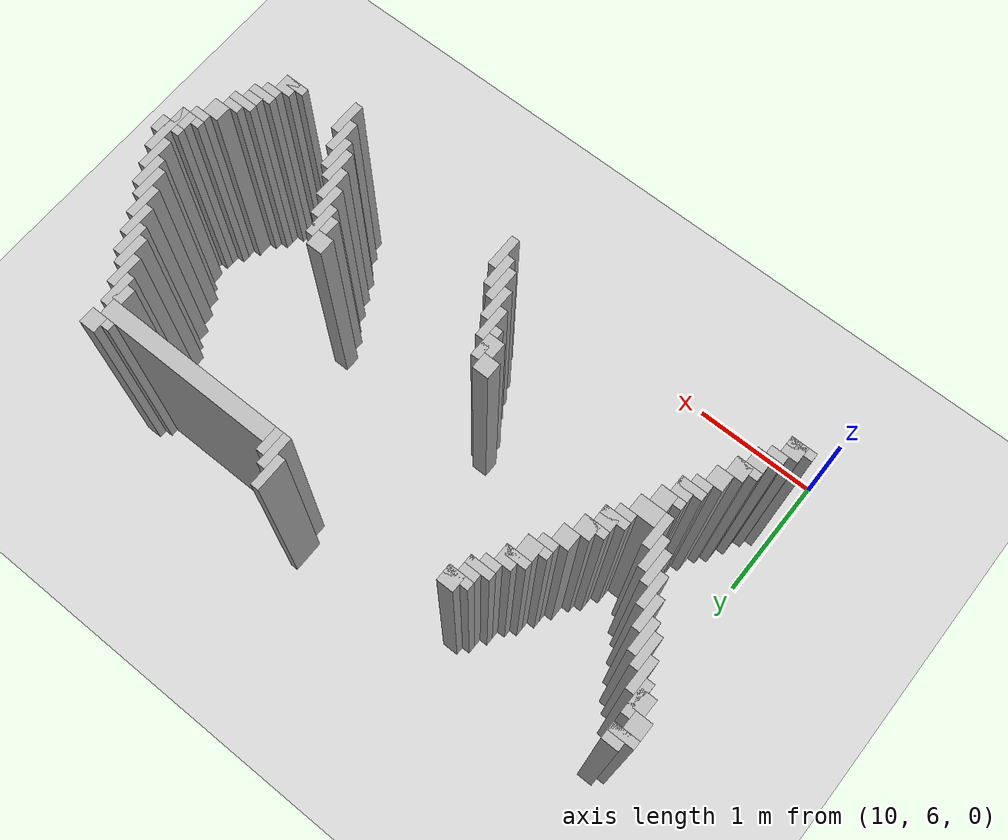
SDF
<sdf version="1.6">
 <world name="slam_world">
  <model name="ground_plane">
   <static>true</static>
   <link name="link">
    <collision name="collision">
     <geometry><plane><normal>0 0 1</normal><size>100 100</size></plane></geometry>
    </collision>
    <visual name="visual">
     <geometry><plane><normal>0 0 1</normal><size>100 100</size></plane></geometry>
     <material>
      <ambient>0.8 0.8 0.8 1</ambient>
      <diffuse>0.8 0.8 0.8 1</diffuse>
      <specular>0.8 0.8 0.8 1</specular>
     </material>
    </visual>
   </link>
  </model>
  <model name="wall_1483">
   <static>true</static>
   <pose>12.670212765957446 8.808510638297872 1.0 0 0 0</pose>
   <link name="link">
    <collision name="collision">
     <geometry><box><size>0.06382978723404255 0.2553191489361702 2.0</size></box></geometry>
    </collision>
    <visual name="visual">
     <geometry><box><size>0.06382978723404255 0.2553191489361702 2.0</size></box></geometry>
     <material><ambient>0.5 0.5 0.5 1</ambient><diffuse>0.7 0.7 0.7 1</diffuse></material>
    </visual>
   </link>
  </model>
  <model name="wall_1497">
   <static>true</static>
   <pose>10.02127659574468 8.74468085106383 1.0 0 0 0</pose>
   <link name="link">
    <collision name="collision">
     <geometry><box><size>0.1276595744680851 0.1276595744680851 2.0</size></box></geometry>
    </collision>
    <visual name="visual">
     <geometry><box><size>0.1276595744680851 0.1276595744680851 2.0</size></box></geometry>
     <material><ambient>0.5 0.5 0.5 1</ambient><diffuse>0.7 0.7 0.7 1</diffuse></material>
    </visual>
   </link>
  </model>
  <model name="wall_1498">
   <static>true</static>
   <pose>12.734042553191488 8.680851063829786 1.0 0 0 0</pose>
   <link name="link">
    <collision name="collision">
     <geometry><box><size>0.06382978723404255 0.2553191489361702 2.0</size></box></geometry>
    </collision>
    <visual name="visual">
     <geometry><box><size>0.06382978723404255 0.2553191489361702 2.0</size></box></geometry>
     <material><ambient>0.5 0.5 0.5 1</ambient><diffuse>0.7 0.7 0.7 1</diffuse></material>
    </visual>
   </link>
  </model>
  <model name="wall_1499">
   <static>true</static>
   <pose>14.234042553191488 8.74468085106383 1.0 0 0 0</pose>
   <link name="link">
    <collision name="collision">
     <geometry><box><size>0.1276595744680851 0.1276595744680851 2.0</size></box></geometry>
    </collision>
    <visual name="visual">
     <geometry><box><size>0.1276595744680851 0.1276595744680851 2.0</size></box></geometry>
     <material><ambient>0.5 0.5 0.5 1</ambient><diffuse>0.7 0.7 0.7 1</diffuse></material>
    </visual>
   </link>
  </model>
  <model name="wall_1504">
   <static>true</static>
   <pose>9.989361702127658 8.712765957446807 1.0 0 0 0</pose>
   <link name="link">
    <collision name="collision">
     <geometry><box><size>0.19148936170212766 0.06382978723404255 2.0</size></box></geometry>
    </collision>
    <visual name="visual">
     <geometry><box><size>0.19148936170212766 0.06382978723404255 2.0</size></box></geometry>
     <material><ambient>0.5 0.5 0.5 1</ambient><diffuse>0.7 0.7 0.7 1</diffuse></material>
    </visual>
   </link>
  </model>
  <model name="wall_1505">
   <static>true</static>
   <pose>12.797872340425531 8.648936170212766 1.0 0 0 0</pose>
   <link name="link">
    <collision name="collision">
     <geometry><box><size>0.06382978723404255 0.19148936170212766 2.0</size></box></geometry>
    </collision>
    <visual name="visual">
     <geometry><box><size>0.06382978723404255 0.19148936170212766 2.0</size></box></geometry>
     <material><ambient>0.5 0.5 0.5 1</ambient><diffuse>0.7 0.7 0.7 1</diffuse></material>
    </visual>
   </link>
  </model>
  <model name="wall_1506">
   <static>true</static>
   <pose>14.202127659574467 8.712765957446807 1.0 0 0 0</pose>
   <link name="link">
    <collision name="collision">
     <geometry><box><size>0.19148936170212766 0.06382978723404255 2.0</size></box></geometry>
    </collision>
    <visual name="visual">
     <geometry><box><size>0.19148936170212766 0.06382978723404255 2.0</size></box></geometry>
     <material><ambient>0.5 0.5 0.5 1</ambient><diffuse>0.7 0.7 0.7 1</diffuse></material>
    </visual>
   </link>
  </model>
  <model name="wall_1513">
   <static>true</static>
   <pose>9.957446808510637 8.617021276595745 1.0 0 0 0</pose>
   <link name="link">
    <collision name="collision">
     <geometry><box><size>0.1276595744680851 0.1276595744680851 2.0</size></box></geometry>
    </collision>
    <visual name="visual">
     <geometry><box><size>0.1276595744680851 0.1276595744680851 2.0</size></box></geometry>
     <material><ambient>0.5 0.5 0.5 1</ambient><diffuse>0.7 0.7 0.7 1</diffuse></material>
    </visual>
   </link>
  </model>
  <model name="wall_1514">
   <static>true</static>
   <pose>11.361702127659573 8.617021276595745 1.0 0 0 0</pose>
   <link name="link">
    <collision name="collision">
     <geometry><box><size>0.1276595744680851 0.1276595744680851 2.0</size></box></geometry>
    </collision>
    <visual name="visual">
     <geometry><box><size>0.1276595744680851 0.1276595744680851 2.0</size></box></geometry>
     <material><ambient>0.5 0.5 0.5 1</ambient><diffuse>0.7 0.7 0.7 1</diffuse></material>
    </visual>
   </link>
  </model>
  <model name="wall_1515">
   <static>true</static>
   <pose>13.53191489361702 8.617021276595745 1.0 0 0 0</pose>
   <link name="link">
    <collision name="collision">
     <geometry><box><size>1.404255319148936 0.1276595744680851 2.0</size></box></geometry>
    </collision>
    <visual name="visual">
     <geometry><box><size>1.404255319148936 0.1276595744680851 2.0</size></box></geometry>
     <material><ambient>0.5 0.5 0.5 1</ambient><diffuse>0.7 0.7 0.7 1</diffuse></material>
    </visual>
   </link>
  </model>
  <model name="wall_1521">
   <static>true</static>
   <pose>10.053191489361701 8.48936170212766 1.0 0 0 0</pose>
   <link name="link">
    <collision name="collision">
     <geometry><box><size>0.06382978723404255 0.2553191489361702 2.0</size></box></geometry>
    </collision>
    <visual name="visual">
     <geometry><box><size>0.06382978723404255 0.2553191489361702 2.0</size></box></geometry>
     <material><ambient>0.5 0.5 0.5 1</ambient><diffuse>0.7 0.7 0.7 1</diffuse></material>
    </visual>
   </link>
  </model>
  <model name="wall_1522">
   <static>true</static>
   <pose>11.329787234042552 8.585106382978722 1.0 0 0 0</pose>
   <link name="link">
    <collision name="collision">
     <geometry><box><size>0.19148936170212766 0.06382978723404255 2.0</size></box></geometry>
    </collision>
    <visual name="visual">
     <geometry><box><size>0.19148936170212766 0.06382978723404255 2.0</size></box></geometry>
     <material><ambient>0.5 0.5 0.5 1</ambient><diffuse>0.7 0.7 0.7 1</diffuse></material>
    </visual>
   </link>
  </model>
  <model name="wall_1523">
   <static>true</static>
   <pose>14.265957446808509 8.48936170212766 1.0 0 0 0</pose>
   <link name="link">
    <collision name="collision">
     <geometry><box><size>0.06382978723404255 0.2553191489361702 2.0</size></box></geometry>
    </collision>
    <visual name="visual">
     <geometry><box><size>0.06382978723404255 0.2553191489361702 2.0</size></box></geometry>
     <material><ambient>0.5 0.5 0.5 1</ambient><diffuse>0.7 0.7 0.7 1</diffuse></material>
    </visual>
   </link>
  </model>
  <model name="wall_1528">
   <static>true</static>
   <pose>10.02127659574468 8.48936170212766 1.0 0 0 0</pose>
   <link name="link">
    <collision name="collision">
     <geometry><box><size>0.1276595744680851 0.1276595744680851 2.0</size></box></geometry>
    </collision>
    <visual name="visual">
     <geometry><box><size>0.1276595744680851 0.1276595744680851 2.0</size></box></geometry>
     <material><ambient>0.5 0.5 0.5 1</ambient><diffuse>0.7 0.7 0.7 1</diffuse></material>
    </visual>
   </link>
  </model>
  <model name="wall_1529">
   <static>true</static>
   <pose>11.297872340425531 8.48936170212766 1.0 0 0 0</pose>
   <link name="link">
    <collision name="collision">
     <geometry><box><size>0.1276595744680851 0.1276595744680851 2.0</size></box></geometry>
    </collision>
    <visual name="visual">
     <geometry><box><size>0.1276595744680851 0.1276595744680851 2.0</size></box></geometry>
     <material><ambient>0.5 0.5 0.5 1</ambient><diffuse>0.7 0.7 0.7 1</diffuse></material>
    </visual>
   </link>
  </model>
  <model name="wall_1530">
   <static>true</static>
   <pose>14.234042553191488 8.48936170212766 1.0 0 0 0</pose>
   <link name="link">
    <collision name="collision">
     <geometry><box><size>0.1276595744680851 0.1276595744680851 2.0</size></box></geometry>
    </collision>
    <visual name="visual">
     <geometry><box><size>0.1276595744680851 0.1276595744680851 2.0</size></box></geometry>
     <material><ambient>0.5 0.5 0.5 1</ambient><diffuse>0.7 0.7 0.7 1</diffuse></material>
    </visual>
   </link>
  </model>
  <model name="wall_1536">
   <static>true</static>
   <pose>10.117021276595743 8.361702127659575 1.0 0 0 0</pose>
   <link name="link">
    <collision name="collision">
     <geometry><box><size>0.06382978723404255 0.2553191489361702 2.0</size></box></geometry>
    </collision>
    <visual name="visual">
     <geometry><box><size>0.06382978723404255 0.2553191489361702 2.0</size></box></geometry>
     <material><ambient>0.5 0.5 0.5 1</ambient><diffuse>0.7 0.7 0.7 1</diffuse></material>
    </visual>
   </link>
  </model>
  <model name="wall_1537">
   <static>true</static>
   <pose>11.26595744680851 8.457446808510637 1.0 0 0 0</pose>
   <link name="link">
    <collision name="collision">
     <geometry><box><size>0.19148936170212766 0.06382978723404255 2.0</size></box></geometry>
    </collision>
    <visual name="visual">
     <geometry><box><size>0.19148936170212766 0.06382978723404255 2.0</size></box></geometry>
     <material><ambient>0.5 0.5 0.5 1</ambient><diffuse>0.7 0.7 0.7 1</diffuse></material>
    </visual>
   </link>
  </model>
  <model name="wall_1538">
   <static>true</static>
   <pose>14.329787234042552 8.361702127659575 1.0 0 0 0</pose>
   <link name="link">
    <collision name="collision">
     <geometry><box><size>0.06382978723404255 0.2553191489361702 2.0</size></box></geometry>
    </collision>
    <visual name="visual">
     <geometry><box><size>0.06382978723404255 0.2553191489361702 2.0</size></box></geometry>
     <material><ambient>0.5 0.5 0.5 1</ambient><diffuse>0.7 0.7 0.7 1</diffuse></material>
    </visual>
   </link>
  </model>
  <model name="wall_1539">
   <static>true</static>
   <pose>11.234042553191488 8.393617021276595 1.0 0 0 0</pose>
   <link name="link">
    <collision name="collision">
     <geometry><box><size>0.1276595744680851 0.06382978723404255 2.0</size></box></geometry>
    </collision>
    <visual name="visual">
     <geometry><box><size>0.1276595744680851 0.06382978723404255 2.0</size></box></geometry>
     <material><ambient>0.5 0.5 0.5 1</ambient><diffuse>0.7 0.7 0.7 1</diffuse></material>
    </visual>
   </link>
  </model>
  <model name="wall_1545">
   <static>true</static>
   <pose>10.180851063829786 8.23404255319149 1.0 0 0 0</pose>
   <link name="link">
    <collision name="collision">
     <geometry><box><size>0.06382978723404255 0.2553191489361702 2.0</size></box></geometry>
    </collision>
    <visual name="visual">
     <geometry><box><size>0.06382978723404255 0.2553191489361702 2.0</size></box></geometry>
     <material><ambient>0.5 0.5 0.5 1</ambient><diffuse>0.7 0.7 0.7 1</diffuse></material>
    </visual>
   </link>
  </model>
  <model name="wall_1546">
   <static>true</static>
   <pose>11.170212765957446 8.297872340425531 1.0 0 0 0</pose>
   <link name="link">
    <collision name="collision">
     <geometry><box><size>0.1276595744680851 0.1276595744680851 2.0</size></box></geometry>
    </collision>
    <visual name="visual">
     <geometry><box><size>0.1276595744680851 0.1276595744680851 2.0</size></box></geometry>
     <material><ambient>0.5 0.5 0.5 1</ambient><diffuse>0.7 0.7 0.7 1</diffuse></material>
    </visual>
   </link>
  </model>
  <model name="wall_1547">
   <static>true</static>
   <pose>14.393617021276595 8.23404255319149 1.0 0 0 0</pose>
   <link name="link">
    <collision name="collision">
     <geometry><box><size>0.06382978723404255 0.2553191489361702 2.0</size></box></geometry>
    </collision>
    <visual name="visual">
     <geometry><box><size>0.06382978723404255 0.2553191489361702 2.0</size></box></geometry>
     <material><ambient>0.5 0.5 0.5 1</ambient><diffuse>0.7 0.7 0.7 1</diffuse></material>
    </visual>
   </link>
  </model>
  <model name="wall_1553">
   <static>true</static>
   <pose>10.24468085106383 8.170212765957446 1.0 0 0 0</pose>
   <link name="link">
    <collision name="collision">
     <geometry><box><size>0.06382978723404255 0.2553191489361702 2.0</size></box></geometry>
    </collision>
    <visual name="visual">
     <geometry><box><size>0.06382978723404255 0.2553191489361702 2.0</size></box></geometry>
     <material><ambient>0.5 0.5 0.5 1</ambient><diffuse>0.7 0.7 0.7 1</diffuse></material>
    </visual>
   </link>
  </model>
  <model name="wall_1554">
   <static>true</static>
   <pose>11.138297872340425 8.26595744680851 1.0 0 0 0</pose>
   <link name="link">
    <collision name="collision">
     <geometry><box><size>0.19148936170212766 0.06382978723404255 2.0</size></box></geometry>
    </collision>
    <visual name="visual">
     <geometry><box><size>0.19148936170212766 0.06382978723404255 2.0</size></box></geometry>
     <material><ambient>0.5 0.5 0.5 1</ambient><diffuse>0.7 0.7 0.7 1</diffuse></material>
    </visual>
   </link>
  </model>
  <model name="wall_1555">
   <static>true</static>
   <pose>14.457446808510637 8.170212765957446 1.0 0 0 0</pose>
   <link name="link">
    <collision name="collision">
     <geometry><box><size>0.06382978723404255 0.2553191489361702 2.0</size></box></geometry>
    </collision>
    <visual name="visual">
     <geometry><box><size>0.06382978723404255 0.2553191489361702 2.0</size></box></geometry>
     <material><ambient>0.5 0.5 0.5 1</ambient><diffuse>0.7 0.7 0.7 1</diffuse></material>
    </visual>
   </link>
  </model>
  <model name="wall_1556">
   <static>true</static>
   <pose>11.106382978723403 8.170212765957446 1.0 0 0 0</pose>
   <link name="link">
    <collision name="collision">
     <geometry><box><size>0.1276595744680851 0.1276595744680851 2.0</size></box></geometry>
    </collision>
    <visual name="visual">
     <geometry><box><size>0.1276595744680851 0.1276595744680851 2.0</size></box></geometry>
     <material><ambient>0.5 0.5 0.5 1</ambient><diffuse>0.7 0.7 0.7 1</diffuse></material>
    </visual>
   </link>
  </model>
  <model name="wall_1562">
   <static>true</static>
   <pose>10.308510638297872 8.042553191489361 1.0 0 0 0</pose>
   <link name="link">
    <collision name="collision">
     <geometry><box><size>0.06382978723404255 0.2553191489361702 2.0</size></box></geometry>
    </collision>
    <visual name="visual">
     <geometry><box><size>0.06382978723404255 0.2553191489361702 2.0</size></box></geometry>
     <material><ambient>0.5 0.5 0.5 1</ambient><diffuse>0.7 0.7 0.7 1</diffuse></material>
    </visual>
   </link>
  </model>
  <model name="wall_1563">
   <static>true</static>
   <pose>11.074468085106382 8.138297872340425 1.0 0 0 0</pose>
   <link name="link">
    <collision name="collision">
     <geometry><box><size>0.19148936170212766 0.06382978723404255 2.0</size></box></geometry>
    </collision>
    <visual name="visual">
     <geometry><box><size>0.19148936170212766 0.06382978723404255 2.0</size></box></geometry>
     <material><ambient>0.5 0.5 0.5 1</ambient><diffuse>0.7 0.7 0.7 1</diffuse></material>
    </visual>
   </link>
  </model>
  <model name="wall_1564">
   <static>true</static>
   <pose>14.52127659574468 8.042553191489361 1.0 0 0 0</pose>
   <link name="link">
    <collision name="collision">
     <geometry><box><size>0.06382978723404255 0.2553191489361702 2.0</size></box></geometry>
    </collision>
    <visual name="visual">
     <geometry><box><size>0.06382978723404255 0.2553191489361702 2.0</size></box></geometry>
     <material><ambient>0.5 0.5 0.5 1</ambient><diffuse>0.7 0.7 0.7 1</diffuse></material>
    </visual>
   </link>
  </model>
  <model name="wall_1565">
   <static>true</static>
   <pose>11.042553191489361 8.074468085106382 1.0 0 0 0</pose>
   <link name="link">
    <collision name="collision">
     <geometry><box><size>0.1276595744680851 0.06382978723404255 2.0</size></box></geometry>
    </collision>
    <visual name="visual">
     <geometry><box><size>0.1276595744680851 0.06382978723404255 2.0</size></box></geometry>
     <material><ambient>0.5 0.5 0.5 1</ambient><diffuse>0.7 0.7 0.7 1</diffuse></material>
    </visual>
   </link>
  </model>
  <model name="wall_1571">
   <static>true</static>
   <pose>10.372340425531915 7.914893617021276 1.0 0 0 0</pose>
   <link name="link">
    <collision name="collision">
     <geometry><box><size>0.06382978723404255 0.2553191489361702 2.0</size></box></geometry>
    </collision>
    <visual name="visual">
     <geometry><box><size>0.06382978723404255 0.2553191489361702 2.0</size></box></geometry>
     <material><ambient>0.5 0.5 0.5 1</ambient><diffuse>0.7 0.7 0.7 1</diffuse></material>
    </visual>
   </link>
  </model>
  <model name="wall_1572">
   <static>true</static>
   <pose>10.978723404255318 7.978723404255319 1.0 0 0 0</pose>
   <link name="link">
    <collision name="collision">
     <geometry><box><size>0.1276595744680851 0.1276595744680851 2.0</size></box></geometry>
    </collision>
    <visual name="visual">
     <geometry><box><size>0.1276595744680851 0.1276595744680851 2.0</size></box></geometry>
     <material><ambient>0.5 0.5 0.5 1</ambient><diffuse>0.7 0.7 0.7 1</diffuse></material>
    </visual>
   </link>
  </model>
  <model name="wall_1573">
   <static>true</static>
   <pose>14.585106382978722 7.914893617021276 1.0 0 0 0</pose>
   <link name="link">
    <collision name="collision">
     <geometry><box><size>0.06382978723404255 0.2553191489361702 2.0</size></box></geometry>
    </collision>
    <visual name="visual">
     <geometry><box><size>0.06382978723404255 0.2553191489361702 2.0</size></box></geometry>
     <material><ambient>0.5 0.5 0.5 1</ambient><diffuse>0.7 0.7 0.7 1</diffuse></material>
    </visual>
   </link>
  </model>
  <model name="wall_1579">
   <static>true</static>
   <pose>10.436170212765957 7.787234042553191 1.0 0 0 0</pose>
   <link name="link">
    <collision name="collision">
     <geometry><box><size>0.06382978723404255 0.2553191489361702 2.0</size></box></geometry>
    </collision>
    <visual name="visual">
     <geometry><box><size>0.06382978723404255 0.2553191489361702 2.0</size></box></geometry>
     <material><ambient>0.5 0.5 0.5 1</ambient><diffuse>0.7 0.7 0.7 1</diffuse></material>
    </visual>
   </link>
  </model>
  <model name="wall_1580">
   <static>true</static>
   <pose>10.914893617021276 7.8510638297872335 1.0 0 0 0</pose>
   <link name="link">
    <collision name="collision">
     <geometry><box><size>0.1276595744680851 0.1276595744680851 2.0</size></box></geometry>
    </collision>
    <visual name="visual">
     <geometry><box><size>0.1276595744680851 0.1276595744680851 2.0</size></box></geometry>
     <material><ambient>0.5 0.5 0.5 1</ambient><diffuse>0.7 0.7 0.7 1</diffuse></material>
    </visual>
   </link>
  </model>
  <model name="wall_1581">
   <static>true</static>
   <pose>14.648936170212766 7.787234042553191 1.0 0 0 0</pose>
   <link name="link">
    <collision name="collision">
     <geometry><box><size>0.06382978723404255 0.2553191489361702 2.0</size></box></geometry>
    </collision>
    <visual name="visual">
     <geometry><box><size>0.06382978723404255 0.2553191489361702 2.0</size></box></geometry>
     <material><ambient>0.5 0.5 0.5 1</ambient><diffuse>0.7 0.7 0.7 1</diffuse></material>
    </visual>
   </link>
  </model>
  <model name="wall_1587">
   <static>true</static>
   <pose>10.5 7.723404255319148 1.0 0 0 0</pose>
   <link name="link">
    <collision name="collision">
     <geometry><box><size>0.06382978723404255 0.2553191489361702 2.0</size></box></geometry>
    </collision>
    <visual name="visual">
     <geometry><box><size>0.06382978723404255 0.2553191489361702 2.0</size></box></geometry>
     <material><ambient>0.5 0.5 0.5 1</ambient><diffuse>0.7 0.7 0.7 1</diffuse></material>
    </visual>
   </link>
  </model>
  <model name="wall_1588">
   <static>true</static>
   <pose>10.882978723404255 7.819148936170212 1.0 0 0 0</pose>
   <link name="link">
    <collision name="collision">
     <geometry><box><size>0.19148936170212766 0.06382978723404255 2.0</size></box></geometry>
    </collision>
    <visual name="visual">
     <geometry><box><size>0.19148936170212766 0.06382978723404255 2.0</size></box></geometry>
     <material><ambient>0.5 0.5 0.5 1</ambient><diffuse>0.7 0.7 0.7 1</diffuse></material>
    </visual>
   </link>
  </model>
  <model name="wall_1589">
   <static>true</static>
   <pose>14.712765957446807 7.723404255319148 1.0 0 0 0</pose>
   <link name="link">
    <collision name="collision">
     <geometry><box><size>0.06382978723404255 0.2553191489361702 2.0</size></box></geometry>
    </collision>
    <visual name="visual">
     <geometry><box><size>0.06382978723404255 0.2553191489361702 2.0</size></box></geometry>
     <material><ambient>0.5 0.5 0.5 1</ambient><diffuse>0.7 0.7 0.7 1</diffuse></material>
    </visual>
   </link>
  </model>
  <model name="wall_1590">
   <static>true</static>
   <pose>10.851063829787233 7.723404255319148 1.0 0 0 0</pose>
   <link name="link">
    <collision name="collision">
     <geometry><box><size>0.1276595744680851 0.1276595744680851 2.0</size></box></geometry>
    </collision>
    <visual name="visual">
     <geometry><box><size>0.1276595744680851 0.1276595744680851 2.0</size></box></geometry>
     <material><ambient>0.5 0.5 0.5 1</ambient><diffuse>0.7 0.7 0.7 1</diffuse></material>
    </visual>
   </link>
  </model>
  <model name="wall_1596">
   <static>true</static>
   <pose>10.563829787234042 7.595744680851063 1.0 0 0 0</pose>
   <link name="link">
    <collision name="collision">
     <geometry><box><size>0.06382978723404255 0.2553191489361702 2.0</size></box></geometry>
    </collision>
    <visual name="visual">
     <geometry><box><size>0.06382978723404255 0.2553191489361702 2.0</size></box></geometry>
     <material><ambient>0.5 0.5 0.5 1</ambient><diffuse>0.7 0.7 0.7 1</diffuse></material>
    </visual>
   </link>
  </model>
  <model name="wall_1597">
   <static>true</static>
   <pose>10.819148936170212 7.691489361702127 1.0 0 0 0</pose>
   <link name="link">
    <collision name="collision">
     <geometry><box><size>0.19148936170212766 0.06382978723404255 2.0</size></box></geometry>
    </collision>
    <visual name="visual">
     <geometry><box><size>0.19148936170212766 0.06382978723404255 2.0</size></box></geometry>
     <material><ambient>0.5 0.5 0.5 1</ambient><diffuse>0.7 0.7 0.7 1</diffuse></material>
    </visual>
   </link>
  </model>
  <model name="wall_1598">
   <static>true</static>
   <pose>14.77659574468085 7.595744680851063 1.0 0 0 0</pose>
   <link name="link">
    <collision name="collision">
     <geometry><box><size>0.06382978723404255 0.2553191489361702 2.0</size></box></geometry>
    </collision>
    <visual name="visual">
     <geometry><box><size>0.06382978723404255 0.2553191489361702 2.0</size></box></geometry>
     <material><ambient>0.5 0.5 0.5 1</ambient><diffuse>0.7 0.7 0.7 1</diffuse></material>
    </visual>
   </link>
  </model>
  <model name="wall_1599">
   <static>true</static>
   <pose>10.787234042553191 7.627659574468084 1.0 0 0 0</pose>
   <link name="link">
    <collision name="collision">
     <geometry><box><size>0.1276595744680851 0.06382978723404255 2.0</size></box></geometry>
    </collision>
    <visual name="visual">
     <geometry><box><size>0.1276595744680851 0.06382978723404255 2.0</size></box></geometry>
     <material><ambient>0.5 0.5 0.5 1</ambient><diffuse>0.7 0.7 0.7 1</diffuse></material>
    </visual>
   </link>
  </model>
  <model name="wall_1605">
   <static>true</static>
   <pose>10.691489361702127 7.531914893617021 1.0 0 0 0</pose>
   <link name="link">
    <collision name="collision">
     <geometry><box><size>0.19148936170212766 0.1276595744680851 2.0</size></box></geometry>
    </collision>
    <visual name="visual">
     <geometry><box><size>0.19148936170212766 0.1276595744680851 2.0</size></box></geometry>
     <material><ambient>0.5 0.5 0.5 1</ambient><diffuse>0.7 0.7 0.7 1</diffuse></material>
    </visual>
   </link>
  </model>
  <model name="wall_1606">
   <static>true</static>
   <pose>14.840425531914892 7.404255319148936 1.0 0 0 0</pose>
   <link name="link">
    <collision name="collision">
     <geometry><box><size>0.06382978723404255 0.3829787234042553 2.0</size></box></geometry>
    </collision>
    <visual name="visual">
     <geometry><box><size>0.06382978723404255 0.3829787234042553 2.0</size></box></geometry>
     <material><ambient>0.5 0.5 0.5 1</ambient><diffuse>0.7 0.7 0.7 1</diffuse></material>
    </visual>
   </link>
  </model>
  <model name="wall_1615">
   <static>true</static>
   <pose>10.659574468085106 7.404255319148936 1.0 0 0 0</pose>
   <link name="link">
    <collision name="collision">
     <geometry><box><size>0.1276595744680851 0.1276595744680851 2.0</size></box></geometry>
    </collision>
    <visual name="visual">
     <geometry><box><size>0.1276595744680851 0.1276595744680851 2.0</size></box></geometry>
     <material><ambient>0.5 0.5 0.5 1</ambient><diffuse>0.7 0.7 0.7 1</diffuse></material>
    </visual>
   </link>
  </model>
  <model name="wall_1616">
   <static>true</static>
   <pose>12.063829787234042 7.404255319148936 1.0 0 0 0</pose>
   <link name="link">
    <collision name="collision">
     <geometry><box><size>0.1276595744680851 0.1276595744680851 2.0</size></box></geometry>
    </collision>
    <visual name="visual">
     <geometry><box><size>0.1276595744680851 0.1276595744680851 2.0</size></box></geometry>
     <material><ambient>0.5 0.5 0.5 1</ambient><diffuse>0.7 0.7 0.7 1</diffuse></material>
    </visual>
   </link>
  </model>
  <model name="wall_1617">
   <static>true</static>
   <pose>13.468085106382977 7.404255319148936 1.0 0 0 0</pose>
   <link name="link">
    <collision name="collision">
     <geometry><box><size>0.1276595744680851 0.1276595744680851 2.0</size></box></geometry>
    </collision>
    <visual name="visual">
     <geometry><box><size>0.1276595744680851 0.1276595744680851 2.0</size></box></geometry>
     <material><ambient>0.5 0.5 0.5 1</ambient><diffuse>0.7 0.7 0.7 1</diffuse></material>
    </visual>
   </link>
  </model>
  <model name="wall_1618">
   <static>true</static>
   <pose>14.904255319148936 7.404255319148936 1.0 0 0 0</pose>
   <link name="link">
    <collision name="collision">
     <geometry><box><size>0.06382978723404255 0.1276595744680851 2.0</size></box></geometry>
    </collision>
    <visual name="visual">
     <geometry><box><size>0.06382978723404255 0.1276595744680851 2.0</size></box></geometry>
     <material><ambient>0.5 0.5 0.5 1</ambient><diffuse>0.7 0.7 0.7 1</diffuse></material>
    </visual>
   </link>
  </model>
  <model name="wall_1623">
   <static>true</static>
   <pose>10.627659574468085 7.372340425531914 1.0 0 0 0</pose>
   <link name="link">
    <collision name="collision">
     <geometry><box><size>0.19148936170212766 0.06382978723404255 2.0</size></box></geometry>
    </collision>
    <visual name="visual">
     <geometry><box><size>0.19148936170212766 0.06382978723404255 2.0</size></box></geometry>
     <material><ambient>0.5 0.5 0.5 1</ambient><diffuse>0.7 0.7 0.7 1</diffuse></material>
    </visual>
   </link>
  </model>
  <model name="wall_1624">
   <static>true</static>
   <pose>12.159574468085106 7.276595744680851 1.0 0 0 0</pose>
   <link name="link">
    <collision name="collision">
     <geometry><box><size>0.06382978723404255 0.2553191489361702 2.0</size></box></geometry>
    </collision>
    <visual name="visual">
     <geometry><box><size>0.06382978723404255 0.2553191489361702 2.0</size></box></geometry>
     <material><ambient>0.5 0.5 0.5 1</ambient><diffuse>0.7 0.7 0.7 1</diffuse></material>
    </visual>
   </link>
  </model>
  <model name="wall_1625">
   <static>true</static>
   <pose>13.563829787234042 7.276595744680851 1.0 0 0 0</pose>
   <link name="link">
    <collision name="collision">
     <geometry><box><size>0.06382978723404255 0.2553191489361702 2.0</size></box></geometry>
    </collision>
    <visual name="visual">
     <geometry><box><size>0.06382978723404255 0.2553191489361702 2.0</size></box></geometry>
     <material><ambient>0.5 0.5 0.5 1</ambient><diffuse>0.7 0.7 0.7 1</diffuse></material>
    </visual>
   </link>
  </model>
  <model name="wall_1626">
   <static>true</static>
   <pose>14.840425531914892 7.372340425531914 1.0 0 0 0</pose>
   <link name="link">
    <collision name="collision">
     <geometry><box><size>0.19148936170212766 0.06382978723404255 2.0</size></box></geometry>
    </collision>
    <visual name="visual">
     <geometry><box><size>0.19148936170212766 0.06382978723404255 2.0</size></box></geometry>
     <material><ambient>0.5 0.5 0.5 1</ambient><diffuse>0.7 0.7 0.7 1</diffuse></material>
    </visual>
   </link>
  </model>
  <model name="wall_1631">
   <static>true</static>
   <pose>10.595744680851062 7.276595744680851 1.0 0 0 0</pose>
   <link name="link">
    <collision name="collision">
     <geometry><box><size>0.1276595744680851 0.1276595744680851 2.0</size></box></geometry>
    </collision>
    <visual name="visual">
     <geometry><box><size>0.1276595744680851 0.1276595744680851 2.0</size></box></geometry>
     <material><ambient>0.5 0.5 0.5 1</ambient><diffuse>0.7 0.7 0.7 1</diffuse></material>
    </visual>
   </link>
  </model>
  <model name="wall_1632">
   <static>true</static>
   <pose>12.127659574468083 7.276595744680851 1.0 0 0 0</pose>
   <link name="link">
    <collision name="collision">
     <geometry><box><size>0.1276595744680851 0.1276595744680851 2.0</size></box></geometry>
    </collision>
    <visual name="visual">
     <geometry><box><size>0.1276595744680851 0.1276595744680851 2.0</size></box></geometry>
     <material><ambient>0.5 0.5 0.5 1</ambient><diffuse>0.7 0.7 0.7 1</diffuse></material>
    </visual>
   </link>
  </model>
  <model name="wall_1633">
   <static>true</static>
   <pose>13.53191489361702 7.276595744680851 1.0 0 0 0</pose>
   <link name="link">
    <collision name="collision">
     <geometry><box><size>0.1276595744680851 0.1276595744680851 2.0</size></box></geometry>
    </collision>
    <visual name="visual">
     <geometry><box><size>0.1276595744680851 0.1276595744680851 2.0</size></box></geometry>
     <material><ambient>0.5 0.5 0.5 1</ambient><diffuse>0.7 0.7 0.7 1</diffuse></material>
    </visual>
   </link>
  </model>
  <model name="wall_1634">
   <static>true</static>
   <pose>14.808510638297872 7.276595744680851 1.0 0 0 0</pose>
   <link name="link">
    <collision name="collision">
     <geometry><box><size>0.1276595744680851 0.1276595744680851 2.0</size></box></geometry>
    </collision>
    <visual name="visual">
     <geometry><box><size>0.1276595744680851 0.1276595744680851 2.0</size></box></geometry>
     <material><ambient>0.5 0.5 0.5 1</ambient><diffuse>0.7 0.7 0.7 1</diffuse></material>
    </visual>
   </link>
  </model>
  <model name="wall_1639">
   <static>true</static>
   <pose>10.563829787234042 7.244680851063829 1.0 0 0 0</pose>
   <link name="link">
    <collision name="collision">
     <geometry><box><size>0.19148936170212766 0.06382978723404255 2.0</size></box></geometry>
    </collision>
    <visual name="visual">
     <geometry><box><size>0.19148936170212766 0.06382978723404255 2.0</size></box></geometry>
     <material><ambient>0.5 0.5 0.5 1</ambient><diffuse>0.7 0.7 0.7 1</diffuse></material>
    </visual>
   </link>
  </model>
  <model name="wall_1640">
   <static>true</static>
   <pose>12.223404255319148 7.148936170212766 1.0 0 0 0</pose>
   <link name="link">
    <collision name="collision">
     <geometry><box><size>0.06382978723404255 0.2553191489361702 2.0</size></box></geometry>
    </collision>
    <visual name="visual">
     <geometry><box><size>0.06382978723404255 0.2553191489361702 2.0</size></box></geometry>
     <material><ambient>0.5 0.5 0.5 1</ambient><diffuse>0.7 0.7 0.7 1</diffuse></material>
    </visual>
   </link>
  </model>
  <model name="wall_1641">
   <static>true</static>
   <pose>13.627659574468083 7.148936170212766 1.0 0 0 0</pose>
   <link name="link">
    <collision name="collision">
     <geometry><box><size>0.06382978723404255 0.2553191489361702 2.0</size></box></geometry>
    </collision>
    <visual name="visual">
     <geometry><box><size>0.06382978723404255 0.2553191489361702 2.0</size></box></geometry>
     <material><ambient>0.5 0.5 0.5 1</ambient><diffuse>0.7 0.7 0.7 1</diffuse></material>
    </visual>
   </link>
  </model>
  <model name="wall_1642">
   <static>true</static>
   <pose>14.77659574468085 7.244680851063829 1.0 0 0 0</pose>
   <link name="link">
    <collision name="collision">
     <geometry><box><size>0.19148936170212766 0.06382978723404255 2.0</size></box></geometry>
    </collision>
    <visual name="visual">
     <geometry><box><size>0.19148936170212766 0.06382978723404255 2.0</size></box></geometry>
     <material><ambient>0.5 0.5 0.5 1</ambient><diffuse>0.7 0.7 0.7 1</diffuse></material>
    </visual>
   </link>
  </model>
  <model name="wall_1645">
   <static>true</static>
   <pose>10.53191489361702 7.180851063829786 1.0 0 0 0</pose>
   <link name="link">
    <collision name="collision">
     <geometry><box><size>0.1276595744680851 0.06382978723404255 2.0</size></box></geometry>
    </collision>
    <visual name="visual">
     <geometry><box><size>0.1276595744680851 0.06382978723404255 2.0</size></box></geometry>
     <material><ambient>0.5 0.5 0.5 1</ambient><diffuse>0.7 0.7 0.7 1</diffuse></material>
    </visual>
   </link>
  </model>
  <model name="wall_1646">
   <static>true</static>
   <pose>14.744680851063828 7.180851063829786 1.0 0 0 0</pose>
   <link name="link">
    <collision name="collision">
     <geometry><box><size>0.1276595744680851 0.06382978723404255 2.0</size></box></geometry>
    </collision>
    <visual name="visual">
     <geometry><box><size>0.1276595744680851 0.06382978723404255 2.0</size></box></geometry>
     <material><ambient>0.5 0.5 0.5 1</ambient><diffuse>0.7 0.7 0.7 1</diffuse></material>
    </visual>
   </link>
  </model>
  <model name="wall_1651">
   <static>true</static>
   <pose>10.468085106382977 7.085106382978723 1.0 0 0 0</pose>
   <link name="link">
    <collision name="collision">
     <geometry><box><size>0.1276595744680851 0.1276595744680851 2.0</size></box></geometry>
    </collision>
    <visual name="visual">
     <geometry><box><size>0.1276595744680851 0.1276595744680851 2.0</size></box></geometry>
     <material><ambient>0.5 0.5 0.5 1</ambient><diffuse>0.7 0.7 0.7 1</diffuse></material>
    </visual>
   </link>
  </model>
  <model name="wall_1652">
   <static>true</static>
   <pose>12.287234042553191 7.0212765957446805 1.0 0 0 0</pose>
   <link name="link">
    <collision name="collision">
     <geometry><box><size>0.06382978723404255 0.2553191489361702 2.0</size></box></geometry>
    </collision>
    <visual name="visual">
     <geometry><box><size>0.06382978723404255 0.2553191489361702 2.0</size></box></geometry>
     <material><ambient>0.5 0.5 0.5 1</ambient><diffuse>0.7 0.7 0.7 1</diffuse></material>
    </visual>
   </link>
  </model>
  <model name="wall_1653">
   <static>true</static>
   <pose>13.691489361702127 7.0212765957446805 1.0 0 0 0</pose>
   <link name="link">
    <collision name="collision">
     <geometry><box><size>0.06382978723404255 0.2553191489361702 2.0</size></box></geometry>
    </collision>
    <visual name="visual">
     <geometry><box><size>0.06382978723404255 0.2553191489361702 2.0</size></box></geometry>
     <material><ambient>0.5 0.5 0.5 1</ambient><diffuse>0.7 0.7 0.7 1</diffuse></material>
    </visual>
   </link>
  </model>
  <model name="wall_1654">
   <static>true</static>
   <pose>14.680851063829786 7.085106382978723 1.0 0 0 0</pose>
   <link name="link">
    <collision name="collision">
     <geometry><box><size>0.1276595744680851 0.1276595744680851 2.0</size></box></geometry>
    </collision>
    <visual name="visual">
     <geometry><box><size>0.1276595744680851 0.1276595744680851 2.0</size></box></geometry>
     <material><ambient>0.5 0.5 0.5 1</ambient><diffuse>0.7 0.7 0.7 1</diffuse></material>
    </visual>
   </link>
  </model>
  <model name="wall_1659">
   <static>true</static>
   <pose>10.404255319148936 6.957446808510638 1.0 0 0 0</pose>
   <link name="link">
    <collision name="collision">
     <geometry><box><size>0.1276595744680851 0.1276595744680851 2.0</size></box></geometry>
    </collision>
    <visual name="visual">
     <geometry><box><size>0.1276595744680851 0.1276595744680851 2.0</size></box></geometry>
     <material><ambient>0.5 0.5 0.5 1</ambient><diffuse>0.7 0.7 0.7 1</diffuse></material>
    </visual>
   </link>
  </model>
  <model name="wall_1660">
   <static>true</static>
   <pose>12.351063829787233 6.8936170212765955 1.0 0 0 0</pose>
   <link name="link">
    <collision name="collision">
     <geometry><box><size>0.06382978723404255 0.2553191489361702 2.0</size></box></geometry>
    </collision>
    <visual name="visual">
     <geometry><box><size>0.06382978723404255 0.2553191489361702 2.0</size></box></geometry>
     <material><ambient>0.5 0.5 0.5 1</ambient><diffuse>0.7 0.7 0.7 1</diffuse></material>
    </visual>
   </link>
  </model>
  <model name="wall_1661">
   <static>true</static>
   <pose>13.755319148936168 6.8936170212765955 1.0 0 0 0</pose>
   <link name="link">
    <collision name="collision">
     <geometry><box><size>0.06382978723404255 0.2553191489361702 2.0</size></box></geometry>
    </collision>
    <visual name="visual">
     <geometry><box><size>0.06382978723404255 0.2553191489361702 2.0</size></box></geometry>
     <material><ambient>0.5 0.5 0.5 1</ambient><diffuse>0.7 0.7 0.7 1</diffuse></material>
    </visual>
   </link>
  </model>
  <model name="wall_1662">
   <static>true</static>
   <pose>14.617021276595743 6.957446808510638 1.0 0 0 0</pose>
   <link name="link">
    <collision name="collision">
     <geometry><box><size>0.1276595744680851 0.1276595744680851 2.0</size></box></geometry>
    </collision>
    <visual name="visual">
     <geometry><box><size>0.1276595744680851 0.1276595744680851 2.0</size></box></geometry>
     <material><ambient>0.5 0.5 0.5 1</ambient><diffuse>0.7 0.7 0.7 1</diffuse></material>
    </visual>
   </link>
  </model>
  <model name="wall_1667">
   <static>true</static>
   <pose>10.372340425531915 6.925531914893616 1.0 0 0 0</pose>
   <link name="link">
    <collision name="collision">
     <geometry><box><size>0.19148936170212766 0.06382978723404255 2.0</size></box></geometry>
    </collision>
    <visual name="visual">
     <geometry><box><size>0.19148936170212766 0.06382978723404255 2.0</size></box></geometry>
     <material><ambient>0.5 0.5 0.5 1</ambient><diffuse>0.7 0.7 0.7 1</diffuse></material>
    </visual>
   </link>
  </model>
  <model name="wall_1668">
   <static>true</static>
   <pose>12.414893617021276 6.829787234042553 1.0 0 0 0</pose>
   <link name="link">
    <collision name="collision">
     <geometry><box><size>0.06382978723404255 0.2553191489361702 2.0</size></box></geometry>
    </collision>
    <visual name="visual">
     <geometry><box><size>0.06382978723404255 0.2553191489361702 2.0</size></box></geometry>
     <material><ambient>0.5 0.5 0.5 1</ambient><diffuse>0.7 0.7 0.7 1</diffuse></material>
    </visual>
   </link>
  </model>
  <model name="wall_1669">
   <static>true</static>
   <pose>13.819148936170212 6.829787234042553 1.0 0 0 0</pose>
   <link name="link">
    <collision name="collision">
     <geometry><box><size>0.06382978723404255 0.2553191489361702 2.0</size></box></geometry>
    </collision>
    <visual name="visual">
     <geometry><box><size>0.06382978723404255 0.2553191489361702 2.0</size></box></geometry>
     <material><ambient>0.5 0.5 0.5 1</ambient><diffuse>0.7 0.7 0.7 1</diffuse></material>
    </visual>
   </link>
  </model>
  <model name="wall_1670">
   <static>true</static>
   <pose>14.585106382978722 6.925531914893616 1.0 0 0 0</pose>
   <link name="link">
    <collision name="collision">
     <geometry><box><size>0.19148936170212766 0.06382978723404255 2.0</size></box></geometry>
    </collision>
    <visual name="visual">
     <geometry><box><size>0.19148936170212766 0.06382978723404255 2.0</size></box></geometry>
     <material><ambient>0.5 0.5 0.5 1</ambient><diffuse>0.7 0.7 0.7 1</diffuse></material>
    </visual>
   </link>
  </model>
  <model name="wall_1673">
   <static>true</static>
   <pose>10.340425531914892 6.829787234042553 1.0 0 0 0</pose>
   <link name="link">
    <collision name="collision">
     <geometry><box><size>0.1276595744680851 0.1276595744680851 2.0</size></box></geometry>
    </collision>
    <visual name="visual">
     <geometry><box><size>0.1276595744680851 0.1276595744680851 2.0</size></box></geometry>
     <material><ambient>0.5 0.5 0.5 1</ambient><diffuse>0.7 0.7 0.7 1</diffuse></material>
    </visual>
   </link>
  </model>
  <model name="wall_1674">
   <static>true</static>
   <pose>14.553191489361701 6.829787234042553 1.0 0 0 0</pose>
   <link name="link">
    <collision name="collision">
     <geometry><box><size>0.1276595744680851 0.1276595744680851 2.0</size></box></geometry>
    </collision>
    <visual name="visual">
     <geometry><box><size>0.1276595744680851 0.1276595744680851 2.0</size></box></geometry>
     <material><ambient>0.5 0.5 0.5 1</ambient><diffuse>0.7 0.7 0.7 1</diffuse></material>
    </visual>
   </link>
  </model>
  <model name="wall_1679">
   <static>true</static>
   <pose>10.308510638297872 6.797872340425531 1.0 0 0 0</pose>
   <link name="link">
    <collision name="collision">
     <geometry><box><size>0.19148936170212766 0.06382978723404255 2.0</size></box></geometry>
    </collision>
    <visual name="visual">
     <geometry><box><size>0.19148936170212766 0.06382978723404255 2.0</size></box></geometry>
     <material><ambient>0.5 0.5 0.5 1</ambient><diffuse>0.7 0.7 0.7 1</diffuse></material>
    </visual>
   </link>
  </model>
  <model name="wall_1680">
   <static>true</static>
   <pose>12.478723404255318 6.702127659574468 1.0 0 0 0</pose>
   <link name="link">
    <collision name="collision">
     <geometry><box><size>0.06382978723404255 0.2553191489361702 2.0</size></box></geometry>
    </collision>
    <visual name="visual">
     <geometry><box><size>0.06382978723404255 0.2553191489361702 2.0</size></box></geometry>
     <material><ambient>0.5 0.5 0.5 1</ambient><diffuse>0.7 0.7 0.7 1</diffuse></material>
    </visual>
   </link>
  </model>
  <model name="wall_1681">
   <static>true</static>
   <pose>13.882978723404253 6.702127659574468 1.0 0 0 0</pose>
   <link name="link">
    <collision name="collision">
     <geometry><box><size>0.06382978723404255 0.2553191489361702 2.0</size></box></geometry>
    </collision>
    <visual name="visual">
     <geometry><box><size>0.06382978723404255 0.2553191489361702 2.0</size></box></geometry>
     <material><ambient>0.5 0.5 0.5 1</ambient><diffuse>0.7 0.7 0.7 1</diffuse></material>
    </visual>
   </link>
  </model>
  <model name="wall_1682">
   <static>true</static>
   <pose>14.52127659574468 6.797872340425531 1.0 0 0 0</pose>
   <link name="link">
    <collision name="collision">
     <geometry><box><size>0.19148936170212766 0.06382978723404255 2.0</size></box></geometry>
    </collision>
    <visual name="visual">
     <geometry><box><size>0.19148936170212766 0.06382978723404255 2.0</size></box></geometry>
     <material><ambient>0.5 0.5 0.5 1</ambient><diffuse>0.7 0.7 0.7 1</diffuse></material>
    </visual>
   </link>
  </model>
  <model name="wall_1685">
   <static>true</static>
   <pose>10.27659574468085 6.734042553191489 1.0 0 0 0</pose>
   <link name="link">
    <collision name="collision">
     <geometry><box><size>0.1276595744680851 0.06382978723404255 2.0</size></box></geometry>
    </collision>
    <visual name="visual">
     <geometry><box><size>0.1276595744680851 0.06382978723404255 2.0</size></box></geometry>
     <material><ambient>0.5 0.5 0.5 1</ambient><diffuse>0.7 0.7 0.7 1</diffuse></material>
    </visual>
   </link>
  </model>
  <model name="wall_1686">
   <static>true</static>
   <pose>14.489361702127658 6.734042553191489 1.0 0 0 0</pose>
   <link name="link">
    <collision name="collision">
     <geometry><box><size>0.1276595744680851 0.06382978723404255 2.0</size></box></geometry>
    </collision>
    <visual name="visual">
     <geometry><box><size>0.1276595744680851 0.06382978723404255 2.0</size></box></geometry>
     <material><ambient>0.5 0.5 0.5 1</ambient><diffuse>0.7 0.7 0.7 1</diffuse></material>
    </visual>
   </link>
  </model>
  <model name="wall_1691">
   <static>true</static>
   <pose>10.212765957446807 6.638297872340425 1.0 0 0 0</pose>
   <link name="link">
    <collision name="collision">
     <geometry><box><size>0.1276595744680851 0.1276595744680851 2.0</size></box></geometry>
    </collision>
    <visual name="visual">
     <geometry><box><size>0.1276595744680851 0.1276595744680851 2.0</size></box></geometry>
     <material><ambient>0.5 0.5 0.5 1</ambient><diffuse>0.7 0.7 0.7 1</diffuse></material>
    </visual>
   </link>
  </model>
  <model name="wall_1693">
   <static>true</static>
   <pose>13.946808510638297 6.574468085106383 1.0 0 0 0</pose>
   <link name="link">
    <collision name="collision">
     <geometry><box><size>0.06382978723404255 0.2553191489361702 2.0</size></box></geometry>
    </collision>
    <visual name="visual">
     <geometry><box><size>0.06382978723404255 0.2553191489361702 2.0</size></box></geometry>
     <material><ambient>0.5 0.5 0.5 1</ambient><diffuse>0.7 0.7 0.7 1</diffuse></material>
    </visual>
   </link>
  </model>
  <model name="wall_1694">
   <static>true</static>
   <pose>14.425531914893616 6.638297872340425 1.0 0 0 0</pose>
   <link name="link">
    <collision name="collision">
     <geometry><box><size>0.1276595744680851 0.1276595744680851 2.0</size></box></geometry>
    </collision>
    <visual name="visual">
     <geometry><box><size>0.1276595744680851 0.1276595744680851 2.0</size></box></geometry>
     <material><ambient>0.5 0.5 0.5 1</ambient><diffuse>0.7 0.7 0.7 1</diffuse></material>
    </visual>
   </link>
  </model>
  <model name="wall_1699">
   <static>true</static>
   <pose>10.180851063829786 6.606382978723404 1.0 0 0 0</pose>
   <link name="link">
    <collision name="collision">
     <geometry><box><size>0.19148936170212766 0.06382978723404255 2.0</size></box></geometry>
    </collision>
    <visual name="visual">
     <geometry><box><size>0.19148936170212766 0.06382978723404255 2.0</size></box></geometry>
     <material><ambient>0.5 0.5 0.5 1</ambient><diffuse>0.7 0.7 0.7 1</diffuse></material>
    </visual>
   </link>
  </model>
  <model name="wall_1702">
   <static>true</static>
   <pose>14.393617021276595 6.606382978723404 1.0 0 0 0</pose>
   <link name="link">
    <collision name="collision">
     <geometry><box><size>0.19148936170212766 0.06382978723404255 2.0</size></box></geometry>
    </collision>
    <visual name="visual">
     <geometry><box><size>0.19148936170212766 0.06382978723404255 2.0</size></box></geometry>
     <material><ambient>0.5 0.5 0.5 1</ambient><diffuse>0.7 0.7 0.7 1</diffuse></material>
    </visual>
   </link>
  </model>
 </world>
</sdf>
